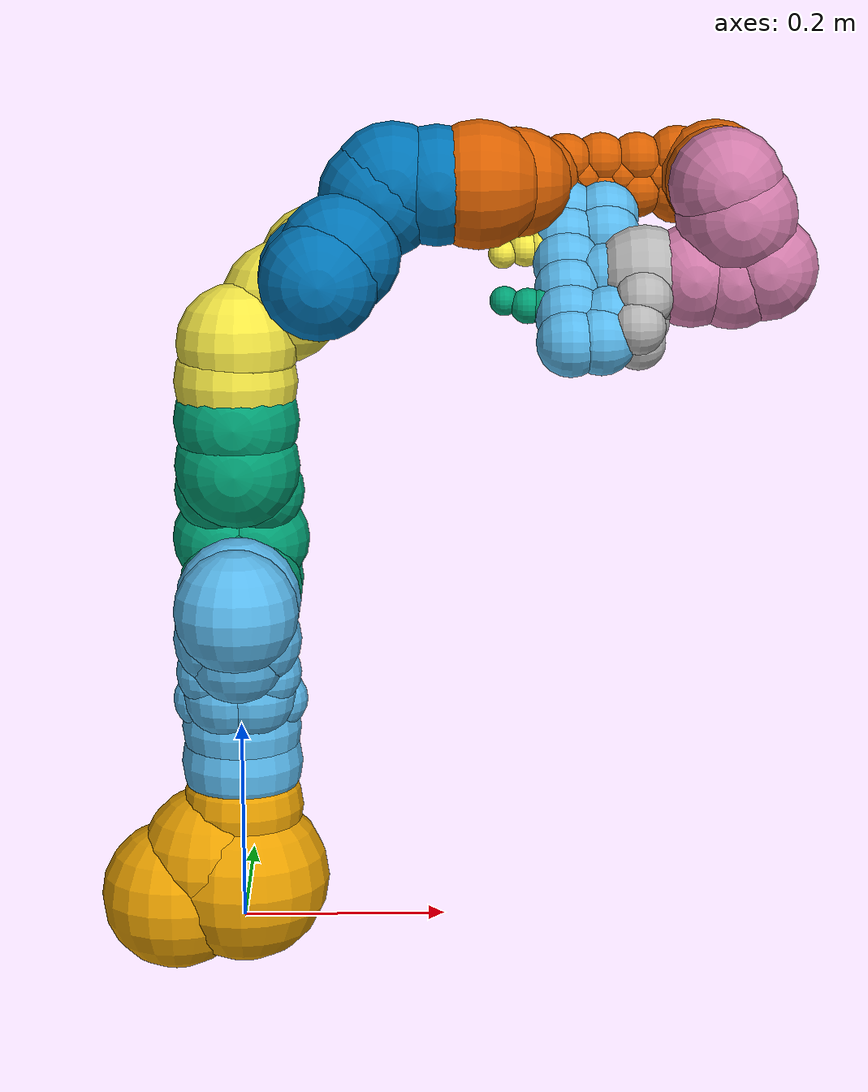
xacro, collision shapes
<?xml version="1.0" encoding="utf-8"?>
<robot xmlns:xacro="http://www.ros.org/wiki/xacro" name="panda">
  <xacro:include filename="../collision_spheres.xacro"/>
  <xacro:include filename="panda_arm.xacro"/>
  <xacro:include filename="hand_fingers_fixed.xacro"/>
  <xacro:panda_arm />
  <xacro:hand_fingers_fixed ns="panda" rpy="0 0 ${-pi/4}" connected_to="panda_link8" q_fingers="0.02"/>
</robot>

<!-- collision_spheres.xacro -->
<robot xmlns:xacro="http://www.ros.org/wiki/xacro">
  <material name="redtran">
    <color rgba=".9 .1 .1 0.3"/>
  </material>
   <material name="greentran">
    <color rgba=".1 .9 .1 0.3"/>
   </material>
   <material name="bluetran">
    <color rgba=".1 .1 .9 0.3"/>
   </material>

   <xacro:macro name="collision_sphere" params="radius:='0' xyz:='0 0 0' material:='redtran' ">
    <collision>
      <origin xyz="${xyz}"/>
      <geometry> <sphere radius="${radius}"/> </geometry>
      <material name="${material}"/>
    </collision>
   </xacro:macro>

   <xacro:macro name="visual_sphere" params="radius:='0' xyz:='0 0 0' material:='redtran' ">
    <visual>
      <origin xyz="${xyz}"/>
      <geometry> <sphere radius="${radius}"/> </geometry>
      <material name="${material}"/>
    </visual>
   </xacro:macro>
</robot>

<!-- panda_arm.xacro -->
<robot xmlns:xacro="http://www.ros.org/wiki/xacro" name="panda">
  <xacro:macro name="panda_arm" params="arm_id:='panda' description_pkg:='franka_description' connected_to:='' xyz:='0 0 0' rpy:='0 0 0'">
    <xacro:unless value="${not connected_to}">
      <joint name="${arm_id}_joint_${connected_to}" type="fixed">
        <parent link="${connected_to}"/>
        <child link="${arm_id}_link0"/>
        <origin rpy="${rpy}" xyz="${xyz}"/>
      </joint>
    </xacro:unless>
    <link name="${arm_id}_link0">
      <visual>
        <geometry>
          <mesh filename="package://${description_pkg}/meshes/visual/link0.dae"/>
        </geometry>
      </visual>
      <xacro:collision_sphere radius=".06" xyz="0 0 .117" material="redtran"/>
      <xacro:collision_sphere radius=".085" xyz="0 0 .042" material="redtran"/>
      <xacro:collision_sphere radius=".075" xyz="-.029 0 .061" material="redtran"/>
      <xacro:collision_sphere radius=".075" xyz="-.068 0 .024" material="redtran"/>
    </link>
    <link name="${arm_id}_link1">
      <visual>
        <geometry>
          <mesh filename="package://${description_pkg}/meshes/visual/link1.dae"/>
        </geometry>
      </visual>
      <xacro:collision_sphere radius="0.06" xyz="0 -.071 0" material="greentran"/>
      <xacro:collision_sphere radius="0.061" xyz="0 -.024 0" material="greentran"/>
      <xacro:collision_sphere radius="0.059" xyz="0 -.001 -.134" material="greentran"/>
      <xacro:collision_sphere radius="0.06" xyz="0 0 -.17" material="greentran"/>
      <xacro:collision_sphere radius="0.047" xyz=".015 -.048 -.032" material="greentran"/>
      <xacro:collision_sphere radius="0.047" xyz="-.015 -.048 -.032" material="greentran"/>
      <xacro:collision_sphere radius="0.047" xyz="0 -.054 -.047" material="greentran"/>
      <xacro:collision_sphere radius="0.035" xyz=".026 -.035 -.069" material="greentran"/>
      <xacro:collision_sphere radius="0.03" xyz=".036 -.011 -.103" material="greentran"/>
      <xacro:collision_sphere radius="0.035" xyz="-.026 -.035 -.069" material="greentran"/>
      <xacro:collision_sphere radius="0.03" xyz="-.036 -.011 -.103" material="greentran"/>
      <xacro:collision_sphere radius="0.044" xyz=".011 -.028 -.093" material="greentran"/>
      <xacro:collision_sphere radius="0.044" xyz="-.011 -.028 -.093" material="greentran"/>
    </link>
    <joint name="${arm_id}_joint1" type="revolute">
      <safety_controller k_position="100.0" k_velocity="40.0" soft_lower_limit="-2.8973" soft_upper_limit="2.8973"/>
      <origin rpy="0 0 0" xyz="0 0 0.333"/>
      <parent link="${arm_id}_link0"/>
      <child link="${arm_id}_link1"/>
      <axis xyz="0 0 1"/>
      <limit effort="87" lower="-2.8973" upper="2.8973" velocity="2.1750"/>
    </joint>
    <link name="${arm_id}_link2">
      <visual>
        <geometry>
          <mesh filename="package://${description_pkg}/meshes/visual/link2.dae"/>
        </geometry>
      </visual>
      <xacro:collision_sphere radius=".061" xyz="0 -.128 .001" material="redtran"/>
      <xacro:collision_sphere radius=".061" xyz="0 0 .023" material="redtran"/>
      <xacro:collision_sphere radius=".052" xyz="-.016 -.045 .051" material="redtran"/>
      <xacro:collision_sphere radius=".043" xyz=".021 -.097 .032" material="redtran"/>
      <xacro:collision_sphere radius=".061" xyz="0 0 .07" material="redtran"/>
      <xacro:collision_sphere radius=".061" xyz="0 -.173 0" material="redtran"/>
      <xacro:collision_sphere radius=".052" xyz=".016 -.045 .051" material="redtran"/>
      <xacro:collision_sphere radius=".043" xyz="-.021 -.097 .032" material="redtran"/>
    </link>
    <joint name="${arm_id}_joint2" type="revolute">
      <safety_controller k_position="100.0" k_velocity="40.0" soft_lower_limit="-1.7628" soft_upper_limit="1.7628"/>
      <origin rpy="${-pi/2} 0 0" xyz="0 0 0"/>
      <parent link="${arm_id}_link1"/>
      <child link="${arm_id}_link2"/>
      <axis xyz="0 0 1"/>
      <limit effort="87" lower="-1.7628" upper="1.7628" velocity="2.1750"/>
    </joint>
    <link name="${arm_id}_link3">
      <visual>
        <geometry>
          <mesh filename="package://${description_pkg}/meshes/visual/link3.dae"/>
        </geometry>
      </visual>
      <xacro:collision_sphere radius=".059" xyz=".045 .026 -.032" material="greentran"/>
      <xacro:collision_sphere radius=".06" xyz=".084 .017 -.001" material="greentran"/>
      <xacro:collision_sphere radius=".059" xyz=".081 .062 0" material="greentran"/>
      <xacro:collision_sphere radius=".06" xyz="0 .001 -.105" material="greentran"/>
      <xacro:collision_sphere radius=".059" xyz=".002 0 -.069" material="greentran"/>
    </link>
    <joint name="${arm_id}_joint3" type="revolute">
      <safety_controller k_position="100.0" k_velocity="40.0" soft_lower_limit="-2.8973" soft_upper_limit="2.8973"/>
      <origin rpy="${pi/2} 0 0" xyz="0 -0.316 0"/>
      <parent link="${arm_id}_link2"/>
      <child link="${arm_id}_link3"/>
      <axis xyz="0 0 1"/>
      <limit effort="87" lower="-2.8973" upper="2.8973" velocity="2.1750"/>
    </joint>
    <link name="${arm_id}_link4">
      <visual>
        <geometry>
          <mesh filename="package://${description_pkg}/meshes/visual/link4.dae"/>
        </geometry>
      </visual>
      <xacro:collision_sphere radius=".057" xyz="0 0 .062" material="redtran"/>
      <xacro:collision_sphere radius=".059" xyz="0 0 .018" material="redtran"/>
      <xacro:collision_sphere radius=".058" xyz="-.022 .019 .04" material="redtran"/>
      <xacro:collision_sphere radius=".058" xyz="-.082 .111 0" material="redtran"/>
      <xacro:collision_sphere radius=".059" xyz="-.084 .069 0" material="redtran"/>
      <xacro:collision_sphere radius=".059" xyz="-.071 .057 .002" material="redtran"/>
    </link>
    <joint name="${arm_id}_joint4" type="revolute">
      <safety_controller k_position="100.0" k_velocity="40.0" soft_lower_limit="-3.0718" soft_upper_limit="-0.0698"/>
      <origin rpy="${pi/2} 0 0" xyz="0.0825 0 0"/>
      <parent link="${arm_id}_link3"/>
      <child link="${arm_id}_link4"/>
      <axis xyz="0 0 1"/>
      <limit effort="87" lower="-3.0718" upper="-0.0698" velocity="2.1750"/>
    </joint>
    <link name="${arm_id}_link5">
      <visual>
        <geometry>
          <mesh filename="package://${description_pkg}/meshes/visual/link5.dae"/>
        </geometry>
      </visual>
      <xacro:collision_sphere radius=".053" xyz="0 .021 -.197" material="greentran"/>
      <xacro:collision_sphere radius=".03" xyz="-.018 .096 -.036" material="greentran"/>
      <xacro:collision_sphere radius=".055" xyz="0 .085 0" material="greentran"/>
      <xacro:collision_sphere radius=".03" xyz=".018 .096 -.036" material="greentran"/>
      <xacro:collision_sphere radius=".053" xyz="0 .037 0" material="greentran"/>
      <xacro:collision_sphere radius=".062" xyz="0 .001 -.233" material="greentran"/>
      <xacro:collision_sphere radius=".043" xyz="0 .059 -.178" material="greentran"/>
      <xacro:collision_sphere radius=".027" xyz=".015 .077 -.147" material="greentran"/>
      <xacro:collision_sphere radius=".027" xyz="-.015 .091 -.076" material="greentran"/>
      <xacro:collision_sphere radius=".024" xyz="0 .094 -.053" material="greentran"/>
      <xacro:collision_sphere radius=".027" xyz=".015 .087 -.112" material="greentran"/>
      <xacro:collision_sphere radius=".027" xyz="-.015 .087 -.112" material="greentran"/>
      <xacro:collision_sphere radius=".027" xyz=".015 .091 -.076" material="greentran"/>
      <xacro:collision_sphere radius=".027" xyz="-.015 .077 -.147" material="greentran"/>
      <xacro:collision_sphere radius=".024" xyz="0 .081 -.132" material="greentran"/>
      <xacro:collision_sphere radius=".022" xyz="0 .087 -.092" material="greentran"/>
    </link>
    <joint name="${arm_id}_joint5" type="revolute">
      <safety_controller k_position="100.0" k_velocity="40.0" soft_lower_limit="-2.8973" soft_upper_limit="2.8973"/>
      <origin rpy="${-pi/2} 0 0" xyz="-0.0825 0.384 0"/>
      <parent link="${arm_id}_link4"/>
      <child link="${arm_id}_link5"/>
      <axis xyz="0 0 1"/>
      <limit effort="12" lower="-2.8973" upper="2.8973" velocity="2.6100"/>
    </joint>
    <link name="${arm_id}_link6">
      <visual>
        <geometry>
          <mesh filename="package://${description_pkg}/meshes/visual/link6.dae"/>
        </geometry>
      </visual>
      <xacro:collision_sphere radius=".05" xyz=".087 -.03 .0" material="redtran"/>
      <xacro:collision_sphere radius=".059" xyz=".028 .011 .009" material="redtran"/>
      <xacro:collision_sphere radius=".055" xyz="-.001 0 .012" material="redtran"/>
      <xacro:collision_sphere radius=".052" xyz=".079 .04 0" material="redtran"/>
      <xacro:collision_sphere radius=".049" xyz=".09 .01 .0" material="redtran"/>
    </link>
    <joint name="${arm_id}_joint6" type="revolute">
      <safety_controller k_position="100.0" k_velocity="40.0" soft_lower_limit="-0.0175" soft_upper_limit="3.7525"/>
      <origin rpy="${pi/2} 0 0" xyz="0 0 0"/>
      <parent link="${arm_id}_link5"/>
      <child link="${arm_id}_link6"/>
      <axis xyz="0 0 1"/>
      <limit effort="12" lower="-0.0175" upper="3.7525" velocity="2.6100"/>
    </joint>
    <link name="${arm_id}_link7">
      <visual>
        <geometry>
          <mesh filename="package://${description_pkg}/meshes/visual/link7.dae"/>
        </geometry>
      </visual>
      <xacro:collision_sphere radius=".05" xyz=".0 .0 .075" material="greentran"/>
      <xacro:collision_sphere radius=".028" xyz=".016 .042 .079" material="greentran"/>
      <xacro:collision_sphere radius=".028" xyz=".041 .012 .079" material="greentran"/>
      <xacro:collision_sphere radius=".026" xyz=".04 .058 .085" material="greentran"/>
      <xacro:collision_sphere radius=".026" xyz=".058 .037 .083" material="greentran"/>
    </link>
    <joint name="${arm_id}_joint7" type="revolute">
      <safety_controller k_position="100.0" k_velocity="40.0" soft_lower_limit="-2.8973" soft_upper_limit="2.8973"/>
      <origin rpy="${pi/2} 0 0" xyz="0.088 0 0"/>
      <parent link="${arm_id}_link6"/>
      <child link="${arm_id}_link7"/>
      <axis xyz="0 0 1"/>
      <limit effort="12" lower="-2.8973" upper="2.8973" velocity="2.6100"/>
    </joint>
    <link name="${arm_id}_link8"/>
    <joint name="${arm_id}_joint8" type="fixed">
      <origin rpy="0 0 0" xyz="0 0 0.107"/>
      <parent link="${arm_id}_link7"/>
      <child link="${arm_id}_link8"/>
      <axis xyz="0 0 0"/>
    </joint>
  </xacro:macro>
</robot>

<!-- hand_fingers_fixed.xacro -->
<robot xmlns:xacro="http://www.ros.org/wiki/xacro" name="hand_fingers_fixed">
  <xacro:macro name="hand_fingers_fixed" params="connected_to:='' ns:='' rpy:='0 0 0' xyz:='0 0 0' q_fingers:='0'">
    <xacro:unless value="${connected_to == ''}">
      <joint name="${ns}_hand_joint" type="fixed">
        <parent link="${connected_to}"/>
        <child link="${ns}_hand"/>
        <origin xyz="${xyz}" rpy="${rpy}"/>
      </joint>
    </xacro:unless>
    <link name="${ns}_hand">
      <visual>
        <geometry>
          <mesh filename="package://franka_description/meshes/visual/hand.dae"/>
        </geometry>
      </visual>
      <xacro:collision_sphere radius=".033" xyz="0 -.077 .041" material="redtran"/>
      <xacro:collision_sphere radius=".033" xyz="0 .075 .012" material="redtran"/>
      <xacro:collision_sphere radius=".033" xyz="0 .077 .041" material="redtran"/>
      <xacro:collision_sphere radius=".033" xyz="0 -.05 .002" material="redtran"/>
      <xacro:collision_sphere radius=".033" xyz="0 -.046 .041" material="redtran"/>
      <xacro:collision_sphere radius=".033" xyz="0 .046 .041" material="redtran"/>
      <xacro:collision_sphere radius=".033" xyz="0 .016 .041" material="redtran"/>
      <xacro:collision_sphere radius=".033" xyz="0 -.016 .041" material="redtran"/>
      <xacro:collision_sphere radius=".033" xyz="0 -.075 .002" material="redtran"/>
      <xacro:collision_sphere radius=".033" xyz="0 .051 .003" material="redtran"/>
      <xacro:collision_sphere radius=".033" xyz="0 0 .003" material="redtran"/>
    </link>
    <link name="${ns}_leftfinger">
      <visual>
        <geometry>
          <mesh filename="package://franka_description/meshes/visual/finger.dae"/>
        </geometry>
      </visual>
      <xacro:collision_sphere radius=".017" xyz="0 .014 .022" material="greentran"/>
      <xacro:collision_sphere radius=".018" xyz="0 .015 .005" material="greentran"/>
      <xacro:collision_sphere radius=".014" xyz="0 .008 .044" material="greentran"/>
    </link>
    <link name="${ns}_rightfinger">
      <visual>
        <origin xyz="0 0 0" rpy="0 0 ${pi}"/>
        <geometry>
          <mesh filename="package://franka_description/meshes/visual/finger.dae"/>
        </geometry>
      </visual>
      <xacro:collision_sphere radius=".017" xyz="0 -.014 .022" material="greentran"/>
      <xacro:collision_sphere radius=".018" xyz="0 -.015 .005" material="greentran"/>
      <xacro:collision_sphere radius=".014" xyz="0 -.008 .044" material="greentran"/>
    </link>
    <link name="${ns}_hand_center"/>
    <joint name="${ns}_finger_joint1" type="fixed">
      <parent link="${ns}_hand"/>
      <child link="${ns}_leftfinger"/>
      <origin xyz="0 ${q_fingers} 0.0584" rpy="0 0 0"/>
    </joint>
    <joint name="${ns}_finger_joint2" type="fixed">
      <parent link="${ns}_hand"/>
      <child link="${ns}_rightfinger"/>
      <origin xyz="0 -${q_fingers} 0.0584" rpy="0 0 0"/>
      <mimic joint="${ns}_finger_joint1" />
    </joint>
    <joint name="${ns}_hand_center_joint" type="fixed">
      <parent link="${ns}_hand"/>
      <child link="${ns}_hand_center"/>
      <origin xyz="0 0 0.08" rpy="0 0 0"/>
    </joint>
  </xacro:macro>
</robot>
